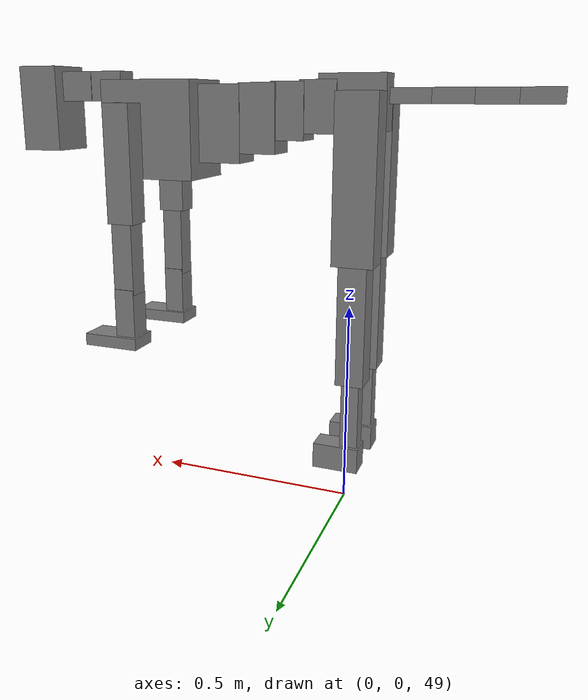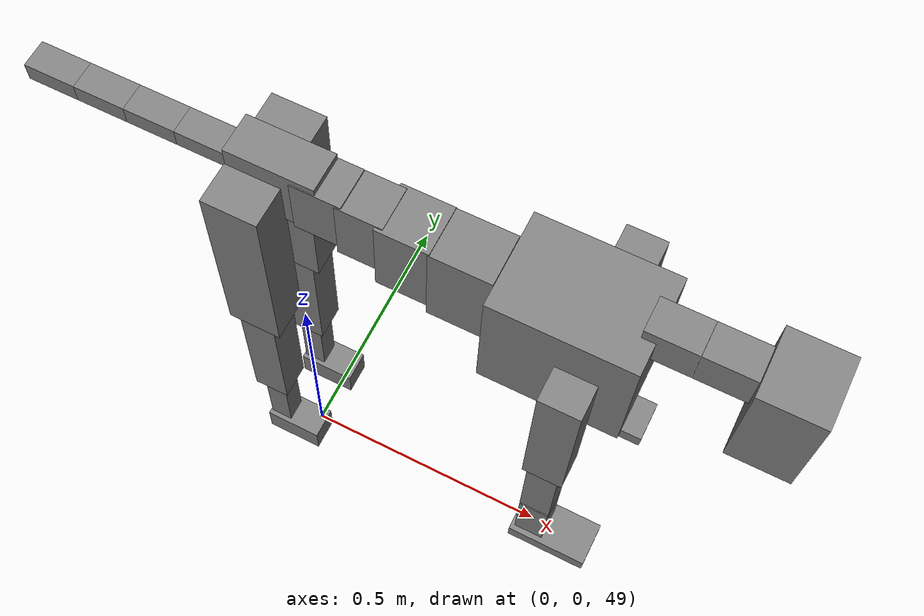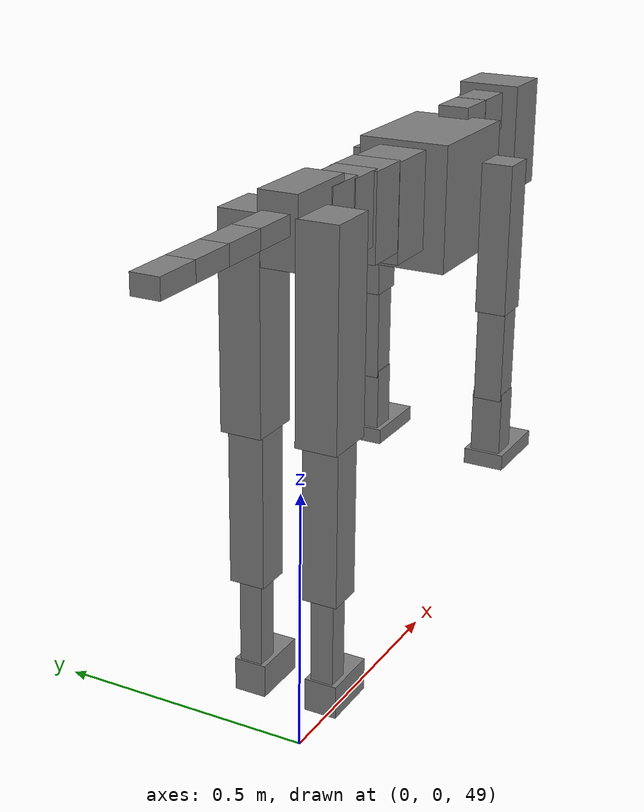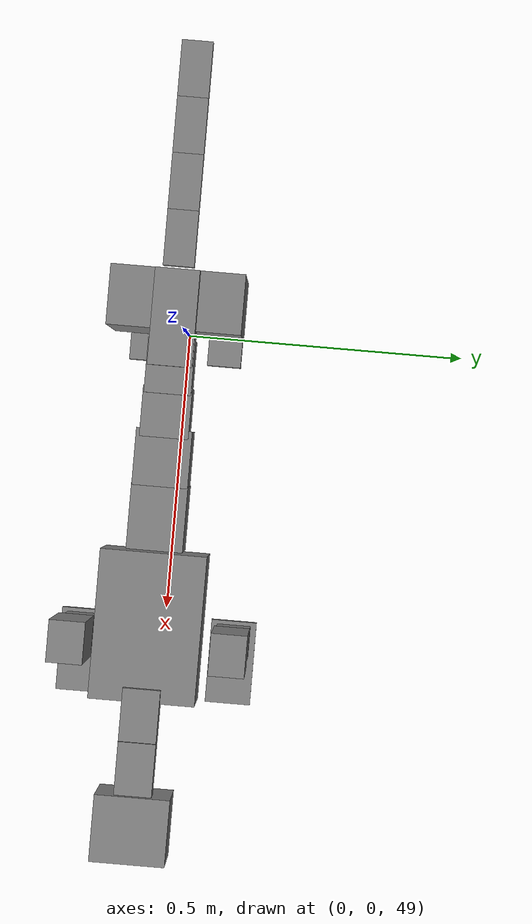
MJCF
<mujoco model="dog">

    <default>
        <joint armature="0.02" stiffness="1" damping="0.2" limited="true"/>
        <geom condim="3" friction="1 0.05 0.05" margin="0.01"/>
        <motor ctrllimited="true" ctrlrange="-1.0 1.0" forcelimited="true" gear="50"/>
    </default>

    <compiler inertiafromgeom="true" angle="radian"/>

    <option timestep="0.016" iterations="50" tolerance="1e-10" solver="Newton" jacobian="dense" cone="pyramidal"/>

    <size nconmax="20000" njmax="60000" nstack="5000000"/>
    <visual>
        <map force="0.1" zfar="30"/>
        <rgba haze="0.15 0.25 0.35 1"/>
        <quality shadowsize="2048"/>
        <global offwidth="800" offheight="800"/>
    </visual>

    <asset>
        <texture type="skybox" builtin="gradient" rgb1="0.3 0.5 0.7" rgb2="0 0 0" width="512" height="512"/>
        <texture name="texplane" type="2d" builtin="checker" rgb1=".2 .3 .4" rgb2=".1 0.15 0.2" width="512" height="512"
                 mark="cross" markrgb=".8 .8 .8"/>
        <texture name="texgeom" type="cube" builtin="flat" mark="cross" width="127" height="1278" rgb1="0.8 0.6 0.4"
                 rgb2="0.8 0.6 0.4" markrgb="1 1 1" random="0.01"/>

        <material name="matplane" reflectance="0.3" texture="texplane" texrepeat="1 1" texuniform="true"/>
        <material name="matgeom" texture="texgeom" texuniform="true" rgba="0.8 0.6 .4 1"/>
    </asset>

    <worldbody>
        <geom name="floor" pos="0 0 0" size="0 0 .25" type="plane" material="matplane" condim="3"/>

        <light directional="false" diffuse=".2 .2 .2" specular="0 0 0" pos="0 0 5" dir="0 0 -1" castshadow="false"/>
        <light mode="targetbodycom" target="torso" directional="false" diffuse=".8 .8 .8" specular="0.3 0.3 0.3"
               pos="0 0 4.0" dir="0 0 -1"/>

        <body name="root" pos="0 0 50">
            <freejoint name="root_1"/>
            <geom type="box" pos="0 0 -0.02" size="0.0774  0.0358  0.063" density="2030"/>

            <body name="spine1" pos="0.054 0 0">
                <joint name="spine1_y" axis="0 1 0" range="0 0.7" limited="true"/>
                <geom type="box" pos="0.02375 0 -0.03" size="0.04375  0.0375  0.05985" density="2030"/>

                <body name="spine2" pos="0.0612 0 0">
                    <joint name="spine2_y" axis="0 1 0" range="-0.15 0.15" limited="true"/>
                    <geom type="box" pos="0.03555  0  -0.04" size="0.04055  0.039  0.06615" density="2030"/>

                    <body name="spine3" pos="0.0730 0 0">
                        <joint name="spine3_y" axis="0 1 0" range="-0.15 0.15" limited="true"/>
                        <geom type="box" pos="0.03555  0  -0.057" size="0.04555  0.0445  0.081" density="2030"/>

                        <body name="spine4" pos="0.0780 0 0">
                            <joint name="spine4_y" axis="0 1 0" range="-0.15 0.15" limited="true"/>
                            <geom type="box" pos="0.05265  0  -0.07" size="0.05265  0.045  0.09135" density="2030"/>

                            <body name="torso" pos="0.1082 0 0">
                                <joint name="torso_y" axis="0 1 0" range="-0.15 0.15" limited="true"/>
                                <geom type="box" pos="0.11925  0  -0.085" size="0.11925  0.085  0.11745"
                                      density="2030"/>

                                <body name="neck1" pos="0.2160  0   0.0180">
                                    <joint name="neck1_y" axis="0 1 0" range="-1.2  -1" limited="true"/>
                                    <geom type="box" pos="0.0423  0  0" size="0.0423  0.03  0.036" density="2325"/>

                                    <body name="neck2" pos="0.0853  0  0">
                                        <joint name="neck2_y" axis="0 1 0" range="0.1  0" limited="true"/>
                                        <geom type="box" pos="0.0423  0  0" size="0.0423  0.03  0.036" density="2325"/>

                                        <body name="head" pos="0.0853  0  0">
                                            <joint name="head_y" axis="0 1 0" range="-0.3  -0.2" limited="true"/>
                                            <geom type="box" pos="0.0531  0  -0.055" size="0.0531  0.06  0.1044"
                                                  density="4030"/>

                                        </body>
                                    </body>
                                </body>

                                <body name="front_shoulder" pos="0.156  0   -0.0480">
                                    <joint name="front_shoulder_y" axis="0 1 0" range="-1 1.5" limited="true"/>
                                    <geom type="box" pos="0 0.13 -0.1152" size="0.0343  0.0293  0.1419" density="1158"/>
                                    <geom type="box" pos="0 -0.13 -0.1152" size="0.0343  0.0293  0.1419"
                                          density="1158"/>

                                    <body name="front_elbow" pos="0  0  -0.2304">
                                        <joint name="front_elbow_y" axis="0 1 0" range="-2 0" limited="true"/>
                                        <geom type="box" pos="0 0.13 -0.1009" size="0.0264  0.0270  0.1009"
                                              density="1081"/>
                                        <geom type="box" pos="0 -0.13 -0.1009" size="0.0264  0.0270  0.1009"
                                              density="1081"/>

                                        <body name="front_wrist" pos="0  0  -0.2018">
                                            <joint name="front_wrist_y" axis="0 1 0" range="-0.2 0" limited="true"/>
                                            <geom type="box" pos="0 0.13 -0.0611" size="0.0260  0.0289  0.0743"
                                                  density="1664"/>
                                            <geom type="box" pos="0 -0.13 -0.0611" size="0.0260  0.0289  0.0743"
                                                  density="1664"/>

                                            <body name="front_finger_end" pos="0  0  -0.1222">
                                                <joint name="front_finger_y" axis="0 1 0" range="-0.4 1"
                                                       limited="true"/>
                                                <geom type="box" pos="0.0389  0.13  0.0000"
                                                      size="0.0714  0.0389  0.0150" density="1515"/>
                                                <geom type="box" pos="0.0389  -0.13  0.0000"
                                                      size="0.0714  0.0389  0.0150" density="1515"/>

                                            </body>

                                        </body>
                                    </body>
                                </body>

                            </body>
                        </body>
                    </body>
                </body>
            </body>

            <body name="back_hip" pos="-0.03 0 -0.018">
                <joint name="back_hip_y" axis="0 1 0" range="-1.5 0.3" limited="true"/>
                <geom type="box" pos="0 0.07 -0.1687" size="0.0486  0.0381  0.1915" density="1154"/>
                <geom type="box" pos="0 -0.07 -0.1687" size="0.0486  0.0381  0.1915" density="1154"/>

                <body name="back_knee" pos="0  0  -0.3374">
                    <joint name="back_knee_y" axis="0 1 0" range="0 2.8" limited="true"/>
                    <geom type="box" pos="0 0.07 -0.1458" size="0.0332  0.0327  0.1614" density="1227"/>
                    <geom type="box" pos="0 -0.07 -0.1458" size="0.0332  0.0327  0.1614" density="1227"/>

                    <body name="back_ankle" pos="0  0  -0.2916">
                        <joint name="back_ankle_y" axis="0 1 0" range="-2.2 0" limited="true"/>
                        <geom type="box" pos="0 0.07 -0.0947" size="0.0211  0.0211  0.1059" density="1284"/>
                        <geom type="box" pos="0 -0.07 -0.0947" size="0.0211  0.0211  0.1059" density="1284"/>

                        <body name="back_toe_end" pos="0  0  -0.1893">
                            <joint name="back_toe_y" axis="0 1 0" range="-0.4 1" limited="true"/>
                            <geom type="box" pos="0.0299  0.07  -0.0157" size="0.0548  0.0299  0.0307" density="1515"/>
                            <geom type="box" pos="0.0299  -0.07  -0.0157" size="0.0548  0.0299  0.0307" density="1515"/>

                        </body>
                    </body>
                </body>
            </body>

            <body name="tail1" pos="-0.074 0 -0.006">
                <joint name="tail1_y" axis="0 1 0" range="-0.2 0.2" limited="true"/>
                <geom type="box" pos="-0.0536  0  0" size="0.045  0.025  0.0175" density="1587"/>

                <body name="tail2" pos="-0.09 0 0">
                    <joint name="tail2_y" axis="0 1 0" range="-0.2 0.2" limited="true"/>
                    <geom type="box" pos="-0.0536  0  0" size="0.045  0.025  0.0175" density="1587"/>

                    <body name="tail3" pos="-0.09 0 0">
                        <joint name="tail3_y" axis="0 1 0" range="-0.2 0.2" limited="true"/>
                        <geom type="box" pos="-0.0536  0  0" size="0.045  0.025  0.0175" density="1587"/>

                        <body name="tail4" pos="-0.09 0 0">
                            <joint name="tail4_y" axis="0 1 0" range="-0.2 0.2" limited="true"/>
                            <geom type="box" pos="-0.0536  0  0" size="0.045  0.025  0.0175" density="1587"/>

                        </body>
                    </body>
                </body>
            </body>
        </body>
    </worldbody>

    <actuator>
        <motor joint="spine1_y" forcerange="-150 150     "/>
        <motor joint="spine2_y" forcerange="-150 150     "/>
        <motor joint="spine3_y" forcerange="-150 150     "/>
        <motor joint="spine4_y" forcerange="-150 150     "/>
        <motor joint="torso_y" forcerange="-150 150     "/>
        <motor joint="neck1_y" forcerange="-100 100       "/>
        <motor joint="neck2_y" forcerange="-100 100       "/>
        <motor joint="head_y" forcerange="-150 150       "/>
        <motor joint="front_shoulder_y" forcerange="-190.00 105.20"/>
        <motor joint="front_elbow_y" forcerange="-105.28 191.35"/>
        <motor joint="front_wrist_y" forcerange="-123.50 107.35"/>
        <motor joint="front_finger_y" forcerange="-76.69 90.93"/>
        <motor joint="back_hip_y" forcerange="-341.14 367.26"/>
        <motor joint="back_knee_y" forcerange="-276.58 399.26"/>
        <motor joint="back_angle_y" forcerange="-114.19 122.67"/>
        <motor joint="back_toe_y" forcerange="-50.35 108.81"/>
        <motor joint="tail1_y" forcerange="-50 50     "/>
        <motor joint="tail2_y" forcerange="-50 50     "/>
        <motor joint="tail3_y" forcerange="-50 50     "/>
        <motor joint="tail4_y" forcerange="-50 50     "/>
    </actuator>
</mujoco>
